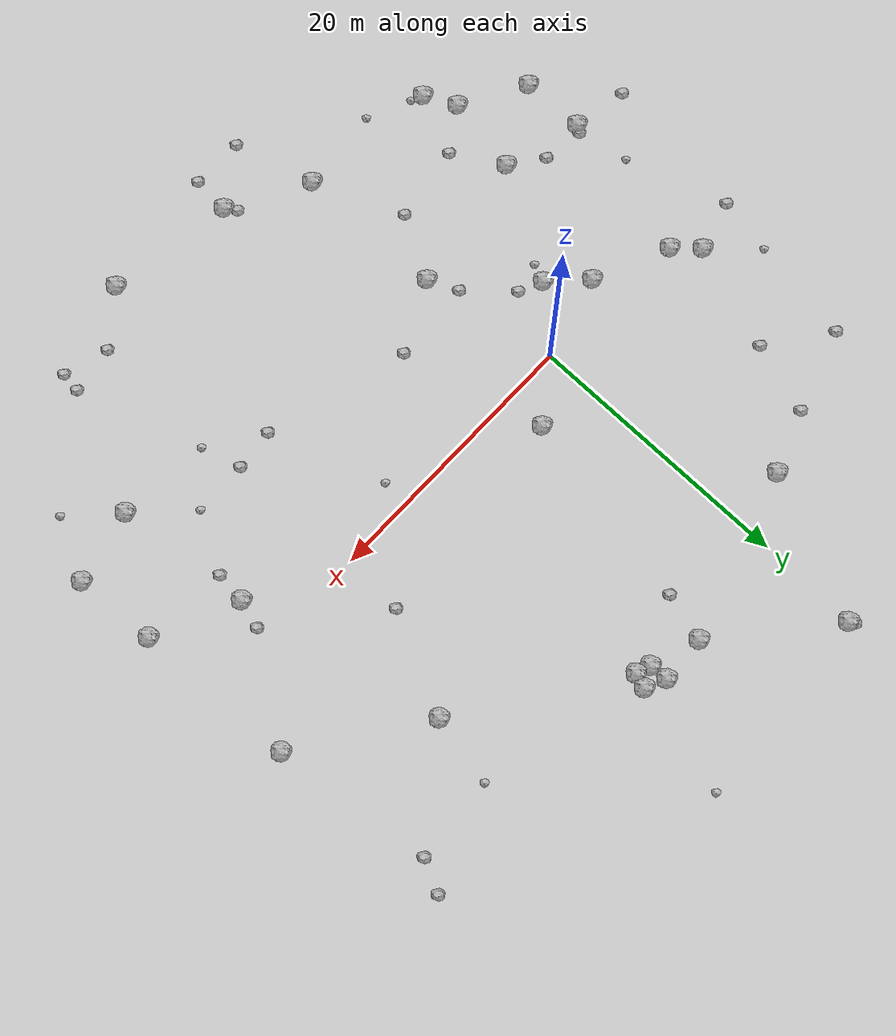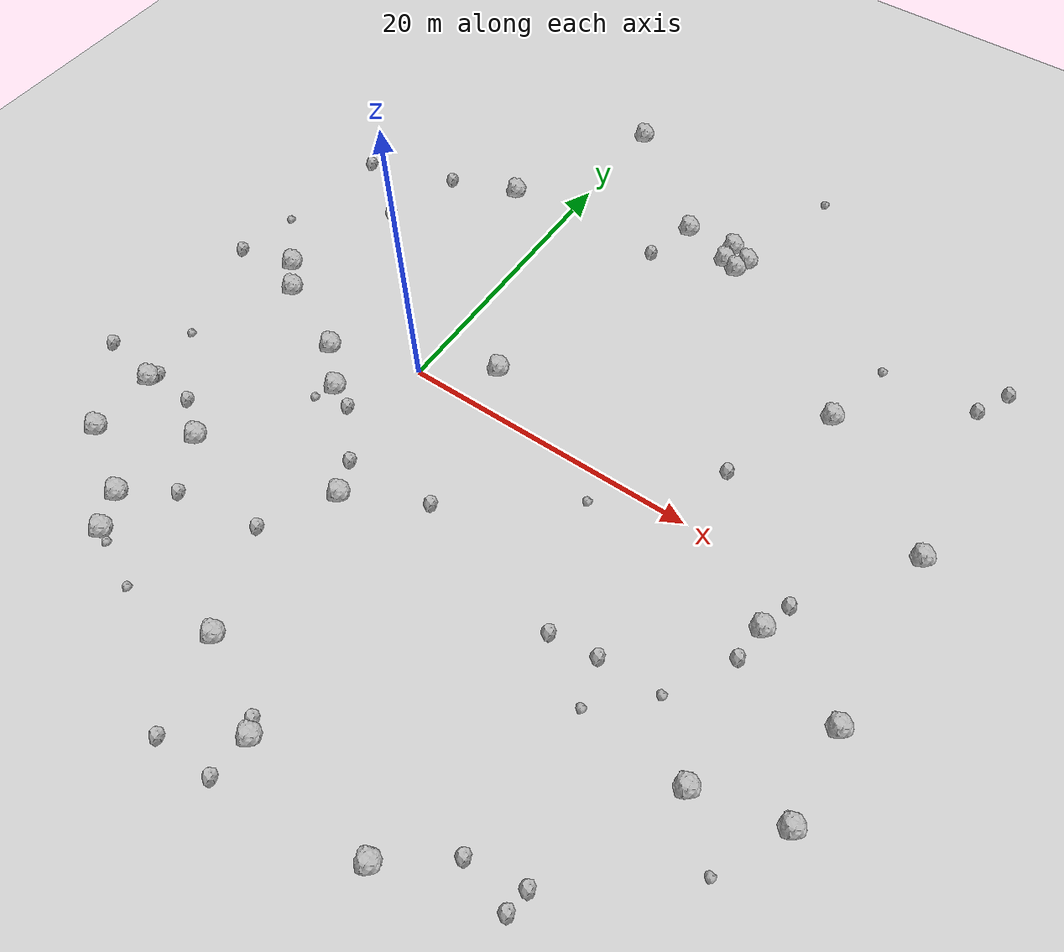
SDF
<sdf version="1.6">
 <world name="default">
  <include><uri>model://custom_ground</uri></include>
  <include><uri>model://sun</uri></include>
  <model name="rock1_0_0">
   <include><uri>model://rock1</uri><pose>33.18843018880962 -6.209308361919689 0.5 0 0 0</pose></include>
  </model>
  <model name="rock1_0_1">
   <include><uri>model://rock1</uri><pose>-13.818226750728527 -14.922664560404023 0.5 0 0 0</pose></include>
  </model>
  <model name="rock1_0_2">
   <include><uri>model://rock1</uri><pose>-8.044625321213648 -19.853205451162633 0.5 0 0 0</pose></include>
  </model>
  <model name="rock1_0_3">
   <include><uri>model://rock1</uri><pose>33.545585316809756 -12.24058555884341 0.5 0 0 0</pose></include>
  </model>
  <model name="rock1_0_4">
   <include><uri>model://rock1</uri><pose>17.066569713132658 -25.588061738076398 0.5 0 0 0</pose></include>
  </model>
  <model name="rock1_0_5">
   <include><uri>model://rock1</uri><pose>12.984274369637106 20.33690470726667 0.5 0 0 0</pose></include>
  </model>
  <model name="rock1_0_6">
   <include><uri>model://rock1</uri><pose>7.7945497626025855 -24.1708309257357 0.5 0 0 0</pose></include>
  </model>
  <model name="rock1_0_7">
   <include><uri>model://rock1</uri><pose>-8.217192282536065 -11.88883489107561 0.5 0 0 0</pose></include>
  </model>
  <model name="rock1_0_8">
   <include><uri>model://rock1</uri><pose>-13.917742807400426 -10.323790409336212 0.5 0 0 0</pose></include>
  </model>
  <model name="rock1_0_9">
   <include><uri>model://rock1</uri><pose>0.2561935281859036 27.315428272231358 0.5 0 0 0</pose></include>
  </model>
  <model name="rock1_0_10">
   <include><uri>model://rock1</uri><pose>23.825086590238556 11.756661908801227 0.5 0 0 0</pose></include>
  </model>
  <model name="rock1_0_11">
   <include><uri>model://rock1</uri><pose>11.50910151762195 21.010256561556027 0.5 0 0 0</pose></include>
  </model>
  <model name="rock1_0_12">
   <include><uri>model://rock1</uri><pose>-11.477563574429151 0.7142527435372088 0.5 0 0 0</pose></include>
  </model>
  <model name="rock1_0_13">
   <include><uri>model://rock1</uri><pose>8.041660791639384 20.81336013459042 0.5 0 0 0</pose></include>
  </model>
  <model name="rock1_0_14">
   <include><uri>model://rock1</uri><pose>32.638299697821296 5.668421329222873 0.5 0 0 0</pose></include>
  </model>
  <model name="rock1_0_15">
   <include><uri>model://rock1</uri><pose>-9.190683344652735 -17.552459785783704 0.5 0 0 0</pose></include>
  </model>
  <model name="rock1_0_16">
   <include><uri>model://rock1</uri><pose>-6.0270720531272985 -1.6813787993681792 0.5 0 0 0</pose></include>
  </model>
  <model name="rock1_0_17">
   <include><uri>model://rock1</uri><pose>27.09786636989797 -3.4538999677737223 0.5 0 0 0</pose></include>
  </model>
  <model name="rock1_0_18">
   <include><uri>model://rock1</uri><pose>4.229681809280862 2.9970650451227243 0.5 0 0 0</pose></include>
  </model>
  <model name="rock1_0_19">
   <include><uri>model://rock1</uri><pose>28.14985920143532 -13.490155751692654 0.5 0 0 0</pose></include>
  </model>
  <model name="rock1_0_20">
   <include><uri>model://rock1</uri><pose>-4.307919778452312 16.973841115639964 0.5 0 0 0</pose></include>
  </model>
  <model name="rock1_0_21">
   <include><uri>model://rock1</uri><pose>-13.02424937628475 2.430750445530535 0.5 0 0 0</pose></include>
  </model>
  <model name="rock1_0_22">
   <include><uri>model://rock1</uri><pose>11.590985986883602 19.631443638194156 0.5 0 0 0</pose></include>
  </model>
  <model name="rock1_0_23">
   <include><uri>model://rock1</uri><pose>1.883814013769399 -10.089778168220164 0.5 0 0 0</pose></include>
  </model>
  <model name="rock1_0_24">
   <include><uri>model://rock1</uri><pose>-3.561392172756907 -4.074029105330883 0.5 0 0 0</pose></include>
  </model>
  <model name="rock1_0_25">
   <include><uri>model://rock1</uri><pose>12.63543362349894 19.28834326476462 0.5 0 0 0</pose></include>
  </model>
  <model name="rock1_0_26">
   <include><uri>model://rock1</uri><pose>2.1100229102322743 -21.015520113940834 0.5 0 0 0</pose></include>
  </model>
  <model name="rock2_0_0">
   <include><uri>model://rock2</uri><pose>7.571767823053058 -26.918647552295052 0.3 0 0 0</pose></include>
  </model>
  <model name="rock2_0_1">
   <include><uri>model://rock2</uri><pose>-10.456085622241782 10.111228250264816 0.3 0 0 0</pose></include>
  </model>
  <model name="rock2_0_2">
   <include><uri>model://rock2</uri><pose>32.32982325989031 19.704424239629446 0.3 0 0 0</pose></include>
  </model>
  <model name="rock2_0_3">
   <include><uri>model://rock2</uri><pose>7.03157017586032 17.34447872069707 0.3 0 0 0</pose></include>
  </model>
  <model name="rock2_0_4">
   <include><uri>model://rock2</uri><pose>3.7250186324969157 -26.91922695886578 0.3 0 0 0</pose></include>
  </model>
  <model name="rock2_0_5">
   <include><uri>model://rock2</uri><pose>-10.650499630868095 -10.183060649703783 0.3 0 0 0</pose></include>
  </model>
  <model name="rock2_0_6">
   <include><uri>model://rock2</uri><pose>0.8705358546260129 -7.888187187701298 0.3 0 0 0</pose></include>
  </model>
  <model name="rock2_0_7">
   <include><uri>model://rock2</uri><pose>-0.041175397187668494 27.74520542396214 0.3 0 0 0</pose></include>
  </model>
  <model name="rock2_0_8">
   <include><uri>model://rock2</uri><pose>-8.836417397193665 15.272904537423713 0.3 0 0 0</pose></include>
  </model>
  <model name="rock2_0_9">
   <include><uri>model://rock2</uri><pose>20.766179338386117 -22.69681398126508 0.3 0 0 0</pose></include>
  </model>
  <model name="rock2_0_10">
   <include><uri>model://rock2</uri><pose>-0.6254044997881927 -14.559732879354058 0.3 0 0 0</pose></include>
  </model>
  <model name="rock2_0_11">
   <include><uri>model://rock2</uri><pose>31.188775450730766 17.376196531141353 0.3 0 0 0</pose></include>
  </model>
  <model name="rock2_0_12">
   <include><uri>model://rock2</uri><pose>24.063502566114202 -23.6152510549266 0.3 0 0 0</pose></include>
  </model>
  <model name="rock2_0_13">
   <include><uri>model://rock2</uri><pose>7.208458075998767 -23.364010192535005 0.3 0 0 0</pose></include>
  </model>
  <model name="rock2_0_14">
   <include><uri>model://rock2</uri><pose>27.712803851447397 -1.3602456941497891 0.3 0 0 0</pose></include>
  </model>
  <model name="rock2_0_15">
   <include><uri>model://rock2</uri><pose>17.423012207498807 -10.396868902778827 0.3 0 0 0</pose></include>
  </model>
  <model name="rock2_0_16">
   <include><uri>model://rock2</uri><pose>-1.8999836722767895 -4.824551277751048 0.3 0 0 0</pose></include>
  </model>
  <model name="rock2_0_17">
   <include><uri>model://rock2</uri><pose>20.463846874040115 -10.059039928782177 0.3 0 0 0</pose></include>
  </model>
  <model name="rock2_0_18">
   <include><uri>model://rock2</uri><pose>6.868870158689148 -7.530342257985222 0.3 0 0 0</pose></include>
  </model>
  <model name="rock2_0_19">
   <include><uri>model://rock2</uri><pose>20.35603481580724 4.537980738488827 0.3 0 0 0</pose></include>
  </model>
  <model name="rock2_0_20">
   <include><uri>model://rock2</uri><pose>26.836760503178382 -5.747236362371915 0.3 0 0 0</pose></include>
  </model>
  <model name="rock2_0_21">
   <include><uri>model://rock2</uri><pose>-14.854907927493429 13.279849013335522 0.3 0 0 0</pose></include>
  </model>
  <model name="rock2_0_22">
   <include><uri>model://rock2</uri><pose>-6.170380772417321 -15.463763879840544 0.3 0 0 0</pose></include>
  </model>
  <model name="rock2_0_23">
   <include><uri>model://rock2</uri><pose>-13.642323132002709 -9.773403739300335 0.3 0 0 0</pose></include>
  </model>
  <model name="rock2_0_24">
   <include><uri>model://rock2</uri><pose>-16.77875984917311 1.4254209667246869 0.3 0 0 0</pose></include>
  </model>
  <model name="rock2_0_25">
   <include><uri>model://rock2</uri><pose>-17.995424514960916 -9.596107025137062 0.3 0 0 0</pose></include>
  </model>
  <model name="rock2_0_26">
   <include><uri>model://rock2</uri><pose>24.258501213731485 -22.13357977781184 0.3 0 0 0</pose></include>
  </model>
  <model name="rock3_0_0">
   <include><uri>model://rock3</uri><pose>24.871913850439007 16.879472932919747 0.2 0 0 0</pose></include>
  </model>
  <model name="rock3_0_1">
   <include><uri>model://rock3</uri><pose>-4.177287822810936 -5.400244271432932 0.2 0 0 0</pose></include>
  </model>
  <model name="rock3_0_2">
   <include><uri>model://rock3</uri><pose>31.329949136679915 -16.61881772879588 0.2 0 0 0</pose></include>
  </model>
  <model name="rock3_0_3">
   <include><uri>model://rock3</uri><pose>14.875583323672025 28.490900848697585 0.2 0 0 0</pose></include>
  </model>
  <model name="rock3_0_4">
   <include><uri>model://rock3</uri><pose>-16.04861849649989 5.57630932477619 0.2 0 0 0</pose></include>
  </model>
  <model name="rock3_0_5">
   <include><uri>model://rock3</uri><pose>24.476492327686024 -9.952902431699723 0.2 0 0 0</pose></include>
  </model>
  <model name="rock3_0_6">
   <include><uri>model://rock3</uri><pose>-14.43925178503147 -6.041487707760197 0.2 0 0 0</pose></include>
  </model>
  <model name="rock3_0_7">
   <include><uri>model://rock3</uri><pose>-7.2882606303831174 -20.278748816978478 0.2 0 0 0</pose></include>
  </model>
  <model name="rock3_0_8">
   <include><uri>model://rock3</uri><pose>21.28753471096143 -13.019635894882637 0.2 0 0 0</pose></include>
  </model>
  <model name="rock3_0_9">
   <include><uri>model://rock3</uri><pose>14.461232884838111 -2.0836294785516607 0.2 0 0 0</pose></include>
  </model>
  <model name="rock3_0_10">
   <include><uri>model://rock3</uri><pose>-4.124668176494957 -21.664299803464353 0.2 0 0 0</pose></include>
  </model>
 </world>
</sdf>
